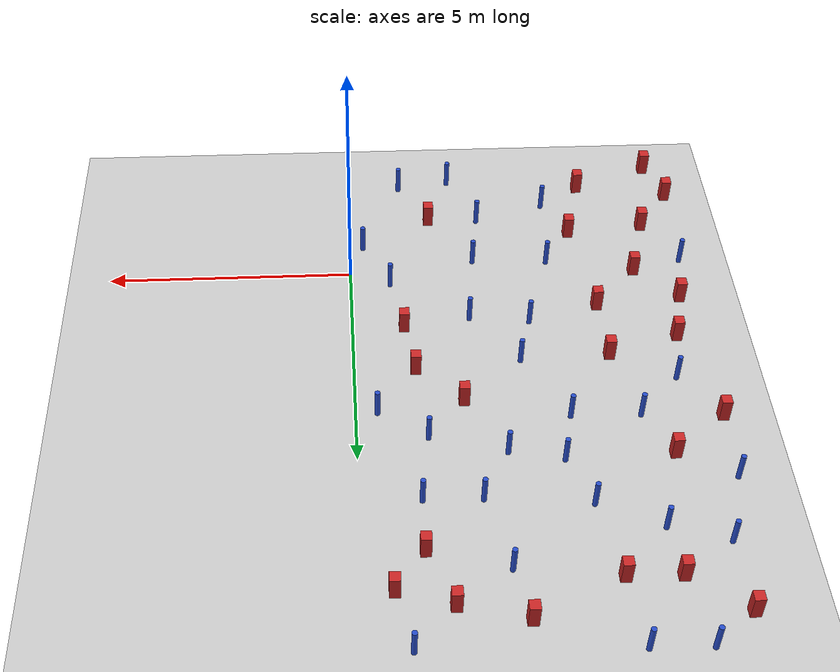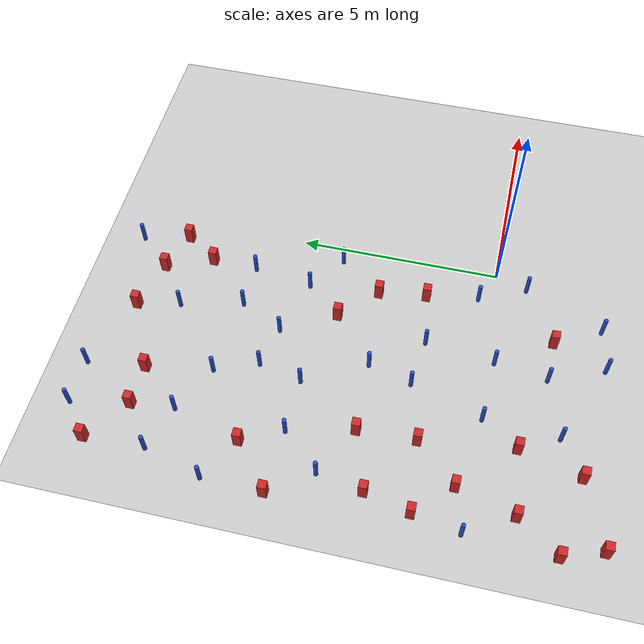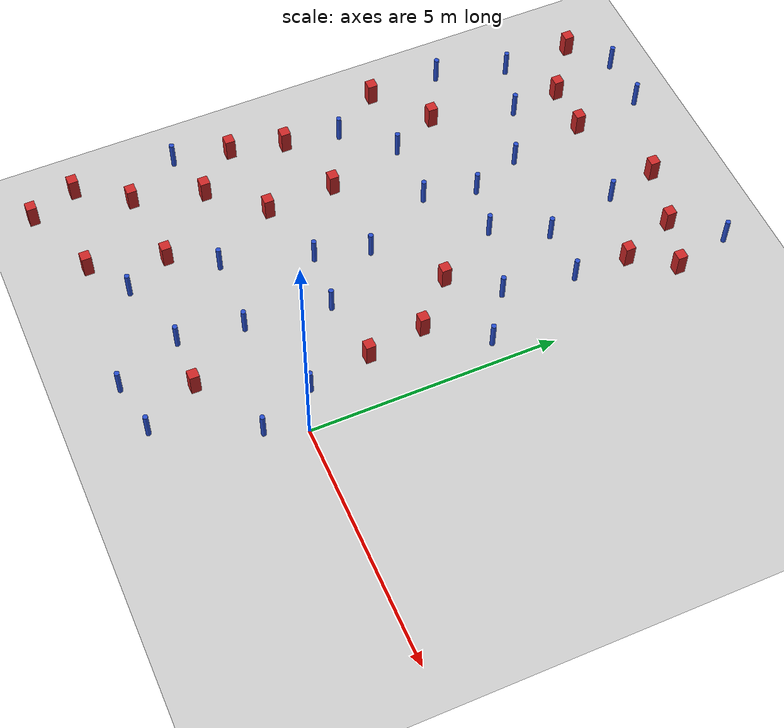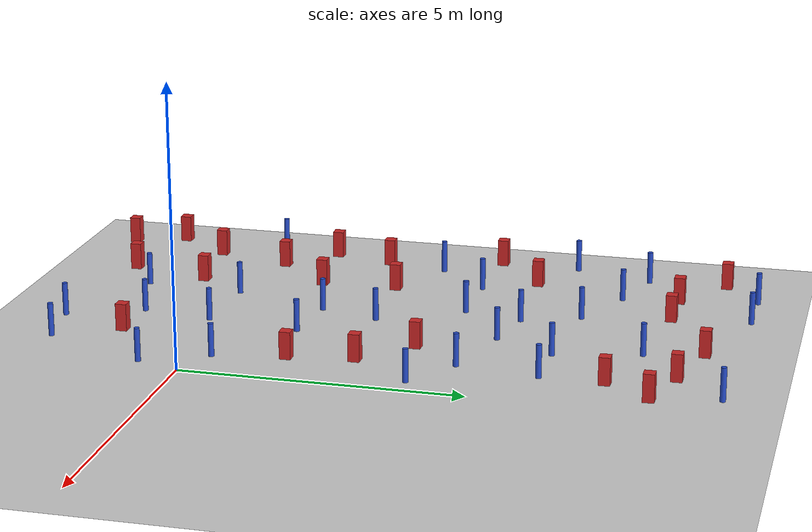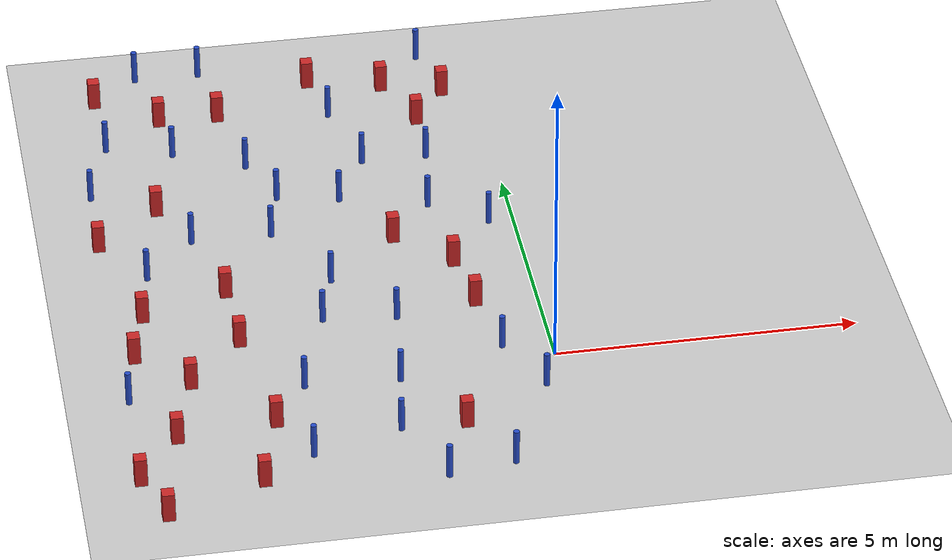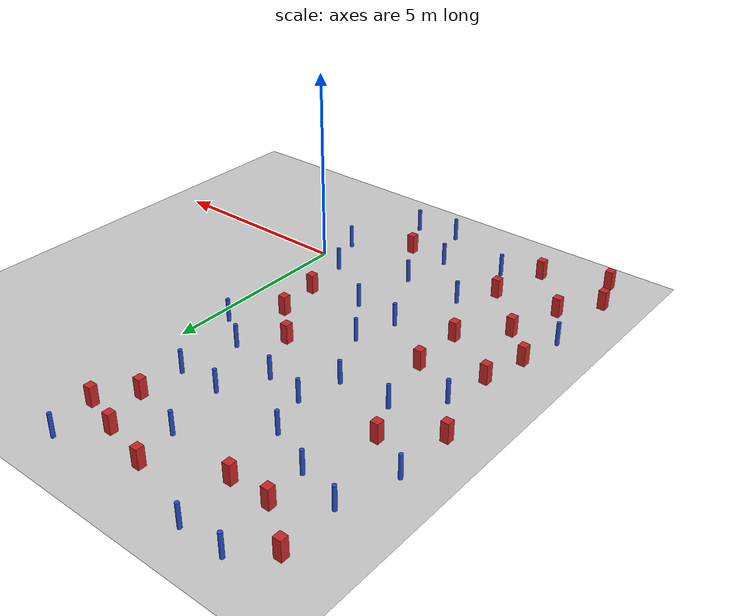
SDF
<sdf version="1.6">
 <world name="default">
  <model name="ground_plane">
   <static>1</static>
   <link name="link">
    <collision name="collision">
     <geometry><plane><normal>0 0 1</normal><size>100 100</size></plane></geometry>
     <surface><friction><ode><mu>100</mu><mu2>50</mu2></ode></friction></surface>
    </collision>
    <visual name="visual">
     <cast_shadows>0</cast_shadows>
     <geometry><plane><normal>0 0 1</normal><size>100 100</size></plane></geometry>
     <material>
      <ambient>1 1 1 1</ambient>
      <diffuse>0.8 0.8 0.8 1</diffuse>
      <specular>0.01 0.01 0.01 1</specular>
     </material>
    </visual>
   </link>
  </model>
  <model name="square_post_obstacle1">
   <static>0</static>
   <link name="link">
    <pose>0 0 0.25 0 -0 0</pose>
    <inertial>
     <mass>100</mass>
     <inertia>
      <ixx>0.166667</ixx>
      <ixy>0</ixy>
      <ixz>0</ixz>
      <iyy>0.166667</iyy>
      <iyz>0</iyz>
      <izz>0.166667</izz>
     </inertia>
    </inertial>
    <collision name="collision"><geometry><box><size>0.2 0.2 0.5</size></box></geometry></collision>
    <visual name="visual">
     <geometry><box><size>0.2 0.2 0.5</size></box></geometry>
     <material>
      <script><name>Gazebo/Red</name><uri>file://media/materials/scripts/gazebo.material</uri></script>
     </material>
    </visual>
   </link>
   <pose>-5.89802 0.141279 0 -5e-06 -0 0.000241</pose>
  </model>
  <model name="square_post_obstacle2">
   <static>0</static>
   <link name="link">
    <pose>0 0 0.25 0 -0 0</pose>
    <inertial>
     <mass>100</mass>
     <inertia>
      <ixx>0.166667</ixx>
      <ixy>0</ixy>
      <ixz>0</ixz>
      <iyy>0.166667</iyy>
      <iyz>0</iyz>
      <izz>0.166667</izz>
     </inertia>
    </inertial>
    <collision name="collision"><geometry><box><size>0.2 0.2 0.5</size></box></geometry></collision>
    <visual name="visual">
     <geometry><box><size>0.2 0.2 0.5</size></box></geometry>
     <material>
      <script><name>Gazebo/Red</name><uri>file://media/materials/scripts/gazebo.material</uri></script>
     </material>
    </visual>
   </link>
   <pose>-6.28758 -1.26073 0 -5e-06 -0 0.000241</pose>
  </model>
  <model name="pole_obstacle5">
   <static>0</static>
   <link name="link">
    <pose>0 0 0.3 0 -0 0</pose>
    <inertial>
     <mass>1</mass>
     <inertia><ixx>0.145833</ixx><ixy>0</ixy><ixz>0</ixz><iyy>0.145833</iyy><iyz>0</iyz><izz>0.125</izz></inertia>
    </inertial>
    <collision name="collision">
     <geometry><cylinder><radius>0.05</radius><length>0.6</length></cylinder></geometry>
    </collision>
    <visual name="visual">
     <geometry><cylinder><radius>0.05</radius><length>0.6</length></cylinder></geometry>
     <material>
      <script><name>Gazebo/Blue</name><uri>file://media/materials/scripts/gazebo.material</uri></script>
     </material>
    </visual>
   </link>
   <pose>-1.13885 6.0064 -1e-06 -0 1e-06 1.1e-05</pose>
  </model>
  <model name="pole_obstacle6">
   <static>0</static>
   <link name="link">
    <pose>0 0 0.3 0 -0 0</pose>
    <inertial>
     <mass>1</mass>
     <inertia><ixx>0.145833</ixx><ixy>0</ixy><ixz>0</ixz><iyy>0.145833</iyy><iyz>0</iyz><izz>0.125</izz></inertia>
    </inertial>
    <collision name="collision">
     <geometry><cylinder><radius>0.05</radius><length>0.6</length></cylinder></geometry>
    </collision>
    <visual name="visual">
     <geometry><cylinder><radius>0.05</radius><length>0.6</length></cylinder></geometry>
     <material>
      <script><name>Gazebo/Blue</name><uri>file://media/materials/scripts/gazebo.material</uri></script>
     </material>
    </visual>
   </link>
   <pose>-3.5662 1.5504 -6e-06 1e-06 -1e-06 8e-06</pose>
  </model>
  <model name="square_post_obstacle9">
   <static>0</static>
   <link name="link">
    <pose>0 0 0.25 0 -0 0</pose>
    <inertial>
     <mass>100</mass>
     <inertia>
      <ixx>0.166667</ixx>
      <ixy>0</ixy>
      <ixz>0</ixz>
      <iyy>0.166667</iyy>
      <iyz>0</iyz>
      <izz>0.166667</izz>
     </inertia>
    </inertial>
    <collision name="collision"><geometry><box><size>0.2 0.2 0.5</size></box></geometry></collision>
    <visual name="visual">
     <geometry><box><size>0.2 0.2 0.5</size></box></geometry>
     <material>
      <script><name>Gazebo/Red</name><uri>file://media/materials/scripts/gazebo.material</uri></script>
     </material>
    </visual>
   </link>
   <pose>-1.0312 1.62568 0 -5e-06 -0 0.000241</pose>
  </model>
  <model name="pole_obstacle7">
   <static>0</static>
   <link name="link">
    <pose>0 0 0.3 0 -0 0</pose>
    <inertial>
     <mass>1</mass>
     <inertia><ixx>0.145833</ixx><ixy>0</ixy><ixz>0</ixz><iyy>0.145833</iyy><iyz>0</iyz><izz>0.125</izz></inertia>
    </inertial>
    <collision name="collision">
     <geometry><cylinder><radius>0.05</radius><length>0.6</length></cylinder></geometry>
    </collision>
    <visual name="visual">
     <geometry><cylinder><radius>0.05</radius><length>0.6</length></cylinder></geometry>
     <material>
      <script><name>Gazebo/Blue</name><uri>file://media/materials/scripts/gazebo.material</uri></script>
     </material>
    </visual>
   </link>
   <pose>-2.36217 1.41405 -1e-06 -0 1e-06 1.1e-05</pose>
  </model>
  <model name="pole_obstacle10">
   <static>0</static>
   <link name="link">
    <pose>0 0 0.3 0 -0 0</pose>
    <inertial>
     <mass>1</mass>
     <inertia><ixx>0.145833</ixx><ixy>0</ixy><ixz>0</ixz><iyy>0.145833</iyy><iyz>0</iyz><izz>0.125</izz></inertia>
    </inertial>
    <collision name="collision">
     <geometry><cylinder><radius>0.05</radius><length>0.6</length></cylinder></geometry>
    </collision>
    <visual name="visual">
     <geometry><cylinder><radius>0.05</radius><length>0.6</length></cylinder></geometry>
     <material>
      <script><name>Gazebo/Blue</name><uri>file://media/materials/scripts/gazebo.material</uri></script>
     </material>
    </visual>
   </link>
   <pose>-4.11229 -0.209701 -2e-06 -1e-06 -0 9e-06</pose>
  </model>
  <model name="pole_obstacle11">
   <static>0</static>
   <link name="link">
    <pose>0 0 0.3 0 -0 0</pose>
    <inertial>
     <mass>1</mass>
     <inertia><ixx>0.145833</ixx><ixy>0</ixy><ixz>0</ixz><iyy>0.145833</iyy><iyz>0</iyz><izz>0.125</izz></inertia>
    </inertial>
    <collision name="collision">
     <geometry><cylinder><radius>0.05</radius><length>0.6</length></cylinder></geometry>
    </collision>
    <visual name="visual">
     <geometry><cylinder><radius>0.05</radius><length>0.6</length></cylinder></geometry>
     <material>
      <script><name>Gazebo/Blue</name><uri>file://media/materials/scripts/gazebo.material</uri></script>
     </material>
    </visual>
   </link>
   <pose>-6.25506 3.1961 -8e-06 0 -0 1.2e-05</pose>
  </model>
  <model name="square_post_obstacle12">
   <static>0</static>
   <link name="link">
    <pose>0 0 0.25 0 -0 0</pose>
    <inertial>
     <mass>100</mass>
     <inertia>
      <ixx>0.166667</ixx>
      <ixy>0</ixy>
      <ixz>0</ixz>
      <iyy>0.166667</iyy>
      <iyz>0</iyz>
      <izz>0.166667</izz>
     </inertia>
    </inertial>
    <collision name="collision"><geometry><box><size>0.2 0.2 0.5</size></box></geometry></collision>
    <visual name="visual">
     <geometry><box><size>0.2 0.2 0.5</size></box></geometry>
     <material>
      <script><name>Gazebo/Red</name><uri>file://media/materials/scripts/gazebo.material</uri></script>
     </material>
    </visual>
   </link>
   <pose>-5.87987 5.09643 0 -5e-06 -0 0.000241</pose>
  </model>
  <model name="square_post_obstacle13">
   <static>0</static>
   <link name="link">
    <pose>0 0 0.25 0 -0 0</pose>
    <inertial>
     <mass>100</mass>
     <inertia>
      <ixx>0.166667</ixx>
      <ixy>0</ixy>
      <ixz>0</ixz>
      <iyy>0.166667</iyy>
      <iyz>0</iyz>
      <izz>0.166667</izz>
     </inertia>
    </inertial>
    <collision name="collision"><geometry><box><size>0.2 0.2 0.5</size></box></geometry></collision>
    <visual name="visual">
     <geometry><box><size>0.2 0.2 0.5</size></box></geometry>
     <material>
      <script><name>Gazebo/Red</name><uri>file://media/materials/scripts/gazebo.material</uri></script>
     </material>
    </visual>
   </link>
   <pose>-1.71 -1.60937 0 -5e-06 -0 0.000241</pose>
  </model>
  <model name="pole_obstacle17">
   <static>0</static>
   <link name="link">
    <pose>0 0 0.3 0 -0 0</pose>
    <inertial>
     <mass>1</mass>
     <inertia><ixx>0.145833</ixx><ixy>0</ixy><ixz>0</ixz><iyy>0.145833</iyy><iyz>0</iyz><izz>0.125</izz></inertia>
    </inertial>
    <collision name="collision">
     <geometry><cylinder><radius>0.05</radius><length>0.6</length></cylinder></geometry>
    </collision>
    <visual name="visual">
     <geometry><cylinder><radius>0.05</radius><length>0.6</length></cylinder></geometry>
     <material>
      <script><name>Gazebo/Blue</name><uri>file://media/materials/scripts/gazebo.material</uri></script>
     </material>
    </visual>
   </link>
   <pose>-2.56661 -0.285708 -7e-06 0 -0 8e-06</pose>
  </model>
  <model name="square_post_obstacle15">
   <static>0</static>
   <link name="link">
    <pose>0 0 0.25 0 -0 0</pose>
    <inertial>
     <mass>100</mass>
     <inertia>
      <ixx>0.166667</ixx>
      <ixy>0</ixy>
      <ixz>0</ixz>
      <iyy>0.166667</iyy>
      <iyz>0</iyz>
      <izz>0.166667</izz>
     </inertia>
    </inertial>
    <collision name="collision"><geometry><box><size>0.2 0.2 0.5</size></box></geometry></collision>
    <visual name="visual">
     <geometry><box><size>0.2 0.2 0.5</size></box></geometry>
     <material>
      <script><name>Gazebo/Red</name><uri>file://media/materials/scripts/gazebo.material</uri></script>
     </material>
    </visual>
   </link>
   <pose>-5.0328 2.5515 0 -5e-06 -0 0.000241</pose>
  </model>
  <model name="square_post_obstacle17">
   <static>0</static>
   <link name="link">
    <pose>0 0 0.25 0 -0 0</pose>
    <inertial>
     <mass>100</mass>
     <inertia>
      <ixx>0.166667</ixx>
      <ixy>0</ixy>
      <ixz>0</ixz>
      <iyy>0.166667</iyy>
      <iyz>0</iyz>
      <izz>0.166667</izz>
     </inertia>
    </inertial>
    <collision name="collision"><geometry><box><size>0.2 0.2 0.5</size></box></geometry></collision>
    <visual name="visual">
     <geometry><box><size>0.2 0.2 0.5</size></box></geometry>
     <material>
      <script><name>Gazebo/Red</name><uri>file://media/materials/scripts/gazebo.material</uri></script>
     </material>
    </visual>
   </link>
   <pose>-5.07218 -2.59141 0 -5e-06 -0 0.000241</pose>
  </model>
  <model name="pole_obstacle23">
   <static>0</static>
   <link name="link">
    <pose>0 0 0.3 0 -0 0</pose>
    <inertial>
     <mass>1</mass>
     <inertia><ixx>0.145833</ixx><ixy>0</ixy><ixz>0</ixz><iyy>0.145833</iyy><iyz>0</iyz><izz>0.125</izz></inertia>
    </inertial>
    <collision name="collision">
     <geometry><cylinder><radius>0.05</radius><length>0.6</length></cylinder></geometry>
    </collision>
    <visual name="visual">
     <geometry><cylinder><radius>0.05</radius><length>0.6</length></cylinder></geometry>
     <material>
      <script><name>Gazebo/Blue</name><uri>file://media/materials/scripts/gazebo.material</uri></script>
     </material>
    </visual>
   </link>
   <pose>-6.51548 7.11232 -4e-06 0 -0 1e-06</pose>
  </model>
  <model name="pole_obstacle24">
   <static>0</static>
   <link name="link">
    <pose>0 0 0.3 0 -0 0</pose>
    <inertial>
     <mass>1</mass>
     <inertia><ixx>0.145833</ixx><ixy>0</ixy><ixz>0</ixz><iyy>0.145833</iyy><iyz>0</iyz><izz>0.125</izz></inertia>
    </inertial>
    <collision name="collision">
     <geometry><cylinder><radius>0.05</radius><length>0.6</length></cylinder></geometry>
    </collision>
    <visual name="visual">
     <geometry><cylinder><radius>0.05</radius><length>0.6</length></cylinder></geometry>
     <material>
      <script><name>Gazebo/Blue</name><uri>file://media/materials/scripts/gazebo.material</uri></script>
     </material>
    </visual>
   </link>
   <pose>-2.2071 -2.8996 -1e-06 1e-06 -1e-06 1e-05</pose>
  </model>
  <model name="square_post_obstacle21">
   <static>0</static>
   <link name="link">
    <pose>0 0 0.25 0 -0 0</pose>
    <inertial>
     <mass>100</mass>
     <inertia>
      <ixx>0.166667</ixx>
      <ixy>0</ixy>
      <ixz>0</ixz>
      <iyy>0.166667</iyy>
      <iyz>0</iyz>
      <izz>0.166667</izz>
     </inertia>
    </inertial>
    <collision name="collision"><geometry><box><size>0.2 0.2 0.5</size></box></geometry></collision>
    <visual name="visual">
     <geometry><box><size>0.2 0.2 0.5</size></box></geometry>
     <material>
      <script><name>Gazebo/Red</name><uri>file://media/materials/scripts/gazebo.material</uri></script>
     </material>
    </visual>
   </link>
   <pose>-6.56118 8.56873 0 -5e-06 -0 0.000241</pose>
  </model>
  <model name="pole_obstacle27">
   <static>0</static>
   <link name="link">
    <pose>0 0 0.3 0 -0 0</pose>
    <inertial>
     <mass>1</mass>
     <inertia><ixx>0.145833</ixx><ixy>0</ixy><ixz>0</ixz><iyy>0.145833</iyy><iyz>0</iyz><izz>0.125</izz></inertia>
    </inertial>
    <collision name="collision">
     <geometry><cylinder><radius>0.05</radius><length>0.6</length></cylinder></geometry>
    </collision>
    <visual name="visual">
     <geometry><cylinder><radius>0.05</radius><length>0.6</length></cylinder></geometry>
     <material>
      <script><name>Gazebo/Blue</name><uri>file://media/materials/scripts/gazebo.material</uri></script>
     </material>
    </visual>
   </link>
   <pose>-3.8262 5.16682 -3e-06 0 -0 7e-06</pose>
  </model>
  <model name="square_post_obstacle23">
   <static>0</static>
   <link name="link">
    <pose>0 0 0.25 0 -0 0</pose>
    <inertial>
     <mass>100</mass>
     <inertia>
      <ixx>0.166667</ixx>
      <ixy>0</ixy>
      <ixz>0</ixz>
      <iyy>0.166667</iyy>
      <iyz>0</iyz>
      <izz>0.166667</izz>
     </inertia>
    </inertial>
    <collision name="collision"><geometry><box><size>0.2 0.2 0.5</size></box></geometry></collision>
    <visual name="visual">
     <geometry><box><size>0.2 0.2 0.5</size></box></geometry>
     <material>
      <script><name>Gazebo/Red</name><uri>file://media/materials/scripts/gazebo.material</uri></script>
     </material>
    </visual>
   </link>
   <pose>-2.07569 3.65792 0 -5e-06 -0 0.000241</pose>
  </model>
  <model name="pole_obstacle29">
   <static>0</static>
   <link name="link">
    <pose>0 0 0.3 0 -0 0</pose>
    <inertial>
     <mass>1</mass>
     <inertia><ixx>0.145833</ixx><ixy>0</ixy><ixz>0</ixz><iyy>0.145833</iyy><iyz>0</iyz><izz>0.125</izz></inertia>
    </inertial>
    <collision name="collision">
     <geometry><cylinder><radius>0.05</radius><length>0.6</length></cylinder></geometry>
    </collision>
    <visual name="visual">
     <geometry><cylinder><radius>0.05</radius><length>0.6</length></cylinder></geometry>
     <material>
      <script><name>Gazebo/Blue</name><uri>file://media/materials/scripts/gazebo.material</uri></script>
     </material>
    </visual>
   </link>
   <pose>-4.22269 6.2037 -1e-06 -0 -1e-06 7e-06</pose>
  </model>
  <model name="square_post_obstacle26">
   <static>0</static>
   <link name="link">
    <pose>0 0 0.25 0 -0 0</pose>
    <inertial>
     <mass>100</mass>
     <inertia>
      <ixx>0.166667</ixx>
      <ixy>0</ixy>
      <ixz>0</ixz>
      <iyy>0.166667</iyy>
      <iyz>0</iyz>
      <izz>0.166667</izz>
     </inertia>
    </inertial>
    <collision name="collision"><geometry><box><size>0.2 0.2 0.5</size></box></geometry></collision>
    <visual name="visual">
     <geometry><box><size>0.2 0.2 0.5</size></box></geometry>
     <material>
      <script><name>Gazebo/Red</name><uri>file://media/materials/scripts/gazebo.material</uri></script>
     </material>
    </visual>
   </link>
   <pose>-4.5096 7.79032 0 -5e-06 -0 0.000241</pose>
  </model>
  <model name="pole_obstacle32">
   <static>0</static>
   <link name="link">
    <pose>0 0 0.3 0 -0 0</pose>
    <inertial>
     <mass>1</mass>
     <inertia><ixx>0.145833</ixx><ixy>0</ixy><ixz>0</ixz><iyy>0.145833</iyy><iyz>0</iyz><izz>0.125</izz></inertia>
    </inertial>
    <collision name="collision">
     <geometry><cylinder><radius>0.05</radius><length>0.6</length></cylinder></geometry>
    </collision>
    <visual name="visual">
     <geometry><cylinder><radius>0.05</radius><length>0.6</length></cylinder></geometry>
     <material>
      <script><name>Gazebo/Blue</name><uri>file://media/materials/scripts/gazebo.material</uri></script>
     </material>
    </visual>
   </link>
   <pose>-0.278104 -0.794941 -6e-06 -1e-06 -0 3e-06</pose>
  </model>
  <model name="pole_obstacle34">
   <static>0</static>
   <link name="link">
    <pose>0 0 0.3 0 -0 0</pose>
    <inertial>
     <mass>1</mass>
     <inertia><ixx>0.145833</ixx><ixy>0</ixy><ixz>0</ixz><iyy>0.145833</iyy><iyz>0</iyz><izz>0.125</izz></inertia>
    </inertial>
    <collision name="collision">
     <geometry><cylinder><radius>0.05</radius><length>0.6</length></cylinder></geometry>
    </collision>
    <visual name="visual">
     <geometry><cylinder><radius>0.05</radius><length>0.6</length></cylinder></geometry>
     <material>
      <script><name>Gazebo/Blue</name><uri>file://media/materials/scripts/gazebo.material</uri></script>
     </material>
    </visual>
   </link>
   <pose>-6.92528 5.68424 -1e-06 -0 -1e-06 7e-06</pose>
  </model>
  <model name="pole_obstacle35">
   <static>0</static>
   <link name="link">
    <pose>0 0 0.3 0 -0 0</pose>
    <inertial>
     <mass>1</mass>
     <inertia><ixx>0.145833</ixx><ixy>0</ixy><ixz>0</ixz><iyy>0.145833</iyy><iyz>0</iyz><izz>0.125</izz></inertia>
    </inertial>
    <collision name="collision">
     <geometry><cylinder><radius>0.05</radius><length>0.6</length></cylinder></geometry>
    </collision>
    <visual name="visual">
     <geometry><cylinder><radius>0.05</radius><length>0.6</length></cylinder></geometry>
     <material>
      <script><name>Gazebo/Blue</name><uri>file://media/materials/scripts/gazebo.material</uri></script>
     </material>
    </visual>
   </link>
   <pose>-0.806339 0.348626 -3e-06 1e-06 -0 2e-06</pose>
  </model>
  <model name="square_post_obstacle29">
   <static>0</static>
   <link name="link">
    <pose>0 0 0.25 0 -0 0</pose>
    <inertial>
     <mass>100</mass>
     <inertia>
      <ixx>0.166667</ixx>
      <ixy>0</ixy>
      <ixz>0</ixz>
      <iyy>0.166667</iyy>
      <iyz>0</iyz>
      <izz>0.166667</izz>
     </inertia>
    </inertial>
    <collision name="collision"><geometry><box><size>0.2 0.2 0.5</size></box></geometry></collision>
    <visual name="visual">
     <geometry><box><size>0.2 0.2 0.5</size></box></geometry>
     <material>
      <script><name>Gazebo/Red</name><uri>file://media/materials/scripts/gazebo.material</uri></script>
     </material>
    </visual>
   </link>
   <pose>-4.98392 1.14563 0 -5e-06 -0 0.000241</pose>
  </model>
  <model name="square_post_obstacle31">
   <static>0</static>
   <link name="link">
    <pose>0 0 0.25 0 -0 0</pose>
    <inertial>
     <mass>100</mass>
     <inertia>
      <ixx>0.166667</ixx>
      <ixy>0</ixy>
      <ixz>0</ixz>
      <iyy>0.166667</iyy>
      <iyz>0</iyz>
      <izz>0.166667</izz>
     </inertia>
    </inertial>
    <collision name="collision"><geometry><box><size>0.2 0.2 0.5</size></box></geometry></collision>
    <visual name="visual">
     <geometry><box><size>0.2 0.2 0.5</size></box></geometry>
     <material>
      <script><name>Gazebo/Red</name><uri>file://media/materials/scripts/gazebo.material</uri></script>
     </material>
    </visual>
   </link>
   <pose>-4.68918 -1.09976 0 -5e-06 -0 0.000241</pose>
  </model>
  <model name="pole_obstacle38">
   <static>0</static>
   <link name="link">
    <pose>0 0 0.3 0 -0 0</pose>
    <inertial>
     <mass>1</mass>
     <inertia><ixx>0.145833</ixx><ixy>0</ixy><ixz>0</ixz><iyy>0.145833</iyy><iyz>0</iyz><izz>0.125</izz></inertia>
    </inertial>
    <collision name="collision">
     <geometry><cylinder><radius>0.05</radius><length>0.6</length></cylinder></geometry>
    </collision>
    <visual name="visual">
     <geometry><cylinder><radius>0.05</radius><length>0.6</length></cylinder></geometry>
     <material>
      <script><name>Gazebo/Blue</name><uri>file://media/materials/scripts/gazebo.material</uri></script>
     </material>
    </visual>
   </link>
   <pose>-4.06551 4.10628 -4e-06 0 -0 1e-06</pose>
  </model>
  <model name="square_post_obstacle32">
   <static>0</static>
   <link name="link">
    <pose>0 0 0.25 0 -0 0</pose>
    <inertial>
     <mass>100</mass>
     <inertia>
      <ixx>0.166667</ixx>
      <ixy>0</ixy>
      <ixz>0</ixz>
      <iyy>0.166667</iyy>
      <iyz>0</iyz>
      <izz>0.166667</izz>
     </inertia>
    </inertial>
    <collision name="collision"><geometry><box><size>0.2 0.2 0.5</size></box></geometry></collision>
    <visual name="visual">
     <geometry><box><size>0.2 0.2 0.5</size></box></geometry>
     <material>
      <script><name>Gazebo/Red</name><uri>file://media/materials/scripts/gazebo.material</uri></script>
     </material>
    </visual>
   </link>
   <pose>-2.82783 8.59758 0 -5e-06 -0 0.000241</pose>
  </model>
  <model name="square_post_obstacle33">
   <static>0</static>
   <link name="link">
    <pose>0 0 0.25 0 -0 0</pose>
    <inertial>
     <mass>100</mass>
     <inertia>
      <ixx>0.166667</ixx>
      <ixy>0</ixy>
      <ixz>0</ixz>
      <iyy>0.166667</iyy>
      <iyz>0</iyz>
      <izz>0.166667</izz>
     </inertia>
    </inertial>
    <collision name="collision"><geometry><box><size>0.2 0.2 0.5</size></box></geometry></collision>
    <visual name="visual">
     <geometry><box><size>0.2 0.2 0.5</size></box></geometry>
     <material>
      <script><name>Gazebo/Red</name><uri>file://media/materials/scripts/gazebo.material</uri></script>
     </material>
    </visual>
   </link>
   <pose>-6.65644 -3.20154 0 -5e-06 -0 0.000241</pose>
  </model>
  <model name="pole_obstacle41">
   <static>0</static>
   <link name="link">
    <pose>0 0 0.3 0 -0 0</pose>
    <inertial>
     <mass>1</mass>
     <inertia><ixx>0.145833</ixx><ixy>0</ixy><ixz>0</ixz><iyy>0.145833</iyy><iyz>0</iyz><izz>0.125</izz></inertia>
    </inertial>
    <collision name="collision">
     <geometry><cylinder><radius>0.05</radius><length>0.6</length></cylinder></geometry>
    </collision>
    <visual name="visual">
     <geometry><cylinder><radius>0.05</radius><length>0.6</length></cylinder></geometry>
     <material>
      <script><name>Gazebo/Blue</name><uri>file://media/materials/scripts/gazebo.material</uri></script>
     </material>
    </visual>
   </link>
   <pose>-5.77847 9.21658 -6e-06 1e-06 0 3e-06</pose>
  </model>
  <model name="pole_obstacle43">
   <static>0</static>
   <link name="link">
    <pose>0 0 0.3 0 -0 0</pose>
    <inertial>
     <mass>1</mass>
     <inertia><ixx>0.145833</ixx><ixy>0</ixy><ixz>0</ixz><iyy>0.145833</iyy><iyz>0</iyz><izz>0.125</izz></inertia>
    </inertial>
    <collision name="collision">
     <geometry><cylinder><radius>0.05</radius><length>0.6</length></cylinder></geometry>
    </collision>
    <visual name="visual">
     <geometry><cylinder><radius>0.05</radius><length>0.6</length></cylinder></geometry>
     <material>
      <script><name>Gazebo/Blue</name><uri>file://media/materials/scripts/gazebo.material</uri></script>
     </material>
    </visual>
   </link>
   <pose>-5.40889 6.76834 -3e-06 -1e-06 -0 1e-06</pose>
  </model>
  <model name="pole_obstacle49">
   <static>0</static>
   <link name="link">
    <pose>0 0 0.3 0 -0 0</pose>
    <inertial>
     <mass>1</mass>
     <inertia><ixx>0.145833</ixx><ixy>0</ixy><ixz>0</ixz><iyy>0.145833</iyy><iyz>0</iyz><izz>0.125</izz></inertia>
    </inertial>
    <collision name="collision">
     <geometry><cylinder><radius>0.05</radius><length>0.6</length></cylinder></geometry>
    </collision>
    <visual name="visual">
     <geometry><cylinder><radius>0.05</radius><length>0.6</length></cylinder></geometry>
     <material>
      <script><name>Gazebo/Blue</name><uri>file://media/materials/scripts/gazebo.material</uri></script>
     </material>
    </visual>
   </link>
   <pose>-1.11859 -2.72491 -8e-06 0 -0 9e-06</pose>
  </model>
  <model name="square_post_obstacle36">
   <static>0</static>
   <link name="link">
    <pose>0 0 0.25 0 -0 0</pose>
    <inertial>
     <mass>100</mass>
     <inertia>
      <ixx>0.166667</ixx>
      <ixy>0</ixy>
      <ixz>0</ixz>
      <iyy>0.166667</iyy>
      <iyz>0</iyz>
      <izz>0.166667</izz>
     </inertia>
    </inertial>
    <collision name="collision"><geometry><box><size>0.2 0.2 0.5</size></box></geometry></collision>
    <visual name="visual">
     <geometry><box><size>0.2 0.2 0.5</size></box></geometry>
     <material>
      <script><name>Gazebo/Red</name><uri>file://media/materials/scripts/gazebo.material</uri></script>
     </material>
    </visual>
   </link>
   <pose>-6.97969 -2.24909 0 -5e-06 -0 0.000241</pose>
  </model>
  <model name="pole_obstacle55">
   <static>0</static>
   <link name="link">
    <pose>0 0 0.3 0 -0 0</pose>
    <inertial>
     <mass>1</mass>
     <inertia><ixx>0.145833</ixx><ixy>0</ixy><ixz>0</ixz><iyy>0.145833</iyy><iyz>0</iyz><izz>0.125</izz></inertia>
    </inertial>
    <collision name="collision">
     <geometry><cylinder><radius>0.05</radius><length>0.6</length></cylinder></geometry>
    </collision>
    <visual name="visual">
     <geometry><cylinder><radius>0.05</radius><length>0.6</length></cylinder></geometry>
     <material>
      <script><name>Gazebo/Blue</name><uri>file://media/materials/scripts/gazebo.material</uri></script>
     </material>
    </visual>
   </link>
   <pose>-2.60371 7.55641 -2e-06 -1e-06 -0 9e-06</pose>
  </model>
  <model name="pole_obstacle56">
   <static>0</static>
   <link name="link">
    <pose>0 0 0.3 0 -0 0</pose>
    <inertial>
     <mass>1</mass>
     <inertia><ixx>0.145833</ixx><ixy>0</ixy><ixz>0</ixz><iyy>0.145833</iyy><iyz>0</iyz><izz>0.125</izz></inertia>
    </inertial>
    <collision name="collision">
     <geometry><cylinder><radius>0.05</radius><length>0.6</length></cylinder></geometry>
    </collision>
    <visual name="visual">
     <geometry><cylinder><radius>0.05</radius><length>0.6</length></cylinder></geometry>
     <material>
      <script><name>Gazebo/Blue</name><uri>file://media/materials/scripts/gazebo.material</uri></script>
     </material>
    </visual>
   </link>
   <pose>-6.93178 -0.157774 -1e-06 0 -0 7e-06</pose>
  </model>
  <model name="square_post_obstacle40">
   <static>0</static>
   <link name="link">
    <pose>0 0 0.25 0 -0 0</pose>
    <inertial>
     <mass>100</mass>
     <inertia>
      <ixx>0.166667</ixx>
      <ixy>0</ixy>
      <ixz>0</ixz>
      <iyy>0.166667</iyy>
      <iyz>0</iyz>
      <izz>0.166667</izz>
     </inertia>
    </inertial>
    <collision name="collision"><geometry><box><size>0.2 0.2 0.5</size></box></geometry></collision>
    <visual name="visual">
     <geometry><box><size>0.2 0.2 0.5</size></box></geometry>
     <material>
      <script><name>Gazebo/Red</name><uri>file://media/materials/scripts/gazebo.material</uri></script>
     </material>
    </visual>
   </link>
   <pose>-1.57316 8.27621 0 -5e-06 -0 0.000241</pose>
  </model>
  <model name="pole_obstacle57">
   <static>0</static>
   <link name="link">
    <pose>0 0 0.3 0 -0 0</pose>
    <inertial>
     <mass>1</mass>
     <inertia><ixx>0.145833</ixx><ixy>0</ixy><ixz>0</ixz><iyy>0.145833</iyy><iyz>0</iyz><izz>0.125</izz></inertia>
    </inertial>
    <collision name="collision">
     <geometry><cylinder><radius>0.05</radius><length>0.6</length></cylinder></geometry>
    </collision>
    <visual name="visual">
     <geometry><cylinder><radius>0.05</radius><length>0.6</length></cylinder></geometry>
     <material>
      <script><name>Gazebo/Blue</name><uri>file://media/materials/scripts/gazebo.material</uri></script>
     </material>
    </visual>
   </link>
   <pose>-1.34233 4.54162 -7e-06 -1e-06 -1e-06 1e-05</pose>
  </model>
  <model name="pole_obstacle61">
   <static>0</static>
   <link name="link">
    <pose>0 0 0.3 0 -0 0</pose>
    <inertial>
     <mass>1</mass>
     <inertia><ixx>0.145833</ixx><ixy>0</ixy><ixz>0</ixz><iyy>0.145833</iyy><iyz>0</iyz><izz>0.125</izz></inertia>
    </inertial>
    <collision name="collision">
     <geometry><cylinder><radius>0.05</radius><length>0.6</length></cylinder></geometry>
    </collision>
    <visual name="visual">
     <geometry><cylinder><radius>0.05</radius><length>0.6</length></cylinder></geometry>
     <material>
      <script><name>Gazebo/Blue</name><uri>file://media/materials/scripts/gazebo.material</uri></script>
     </material>
    </visual>
   </link>
   <pose>-2.79259 4.94894 -2e-06 -1e-06 -0 9e-06</pose>
  </model>
  <model name="pole_obstacle62">
   <static>0</static>
   <link name="link">
    <pose>0 0 0.3 0 -0 0</pose>
    <inertial>
     <mass>1</mass>
     <inertia><ixx>0.145833</ixx><ixy>0</ixy><ixz>0</ixz><iyy>0.145833</iyy><iyz>0</iyz><izz>0.125</izz></inertia>
    </inertial>
    <collision name="collision">
     <geometry><cylinder><radius>0.05</radius><length>0.6</length></cylinder></geometry>
    </collision>
    <visual name="visual">
     <geometry><cylinder><radius>0.05</radius><length>0.6</length></cylinder></geometry>
     <material>
      <script><name>Gazebo/Blue</name><uri>file://media/materials/scripts/gazebo.material</uri></script>
     </material>
    </visual>
   </link>
   <pose>-2.75684 -1.57645 -3e-06 0 -0 6e-06</pose>
  </model>
  <model name="pole_obstacle63">
   <static>0</static>
   <link name="link">
    <pose>0 0 0.3 0 -0 0</pose>
    <inertial>
     <mass>1</mass>
     <inertia><ixx>0.145833</ixx><ixy>0</ixy><ixz>0</ixz><iyy>0.145833</iyy><iyz>0</iyz><izz>0.125</izz></inertia>
    </inertial>
    <collision name="collision">
     <geometry><cylinder><radius>0.05</radius><length>0.6</length></cylinder></geometry>
    </collision>
    <visual name="visual">
     <geometry><cylinder><radius>0.05</radius><length>0.6</length></cylinder></geometry>
     <material>
      <script><name>Gazebo/Blue</name><uri>file://media/materials/scripts/gazebo.material</uri></script>
     </material>
    </visual>
   </link>
   <pose>-4.21872 -2.02426 -1e-06 -1e-06 0 1.2e-05</pose>
  </model>
  <model name="pole_obstacle65">
   <static>0</static>
   <link name="link">
    <pose>0 0 0.3 0 -0 0</pose>
    <inertial>
     <mass>1</mass>
     <inertia><ixx>0.145833</ixx><ixy>0</ixy><ixz>0</ixz><iyy>0.145833</iyy><iyz>0</iyz><izz>0.125</izz></inertia>
    </inertial>
    <collision name="collision">
     <geometry><cylinder><radius>0.05</radius><length>0.6</length></cylinder></geometry>
    </collision>
    <visual name="visual">
     <geometry><cylinder><radius>0.05</radius><length>0.6</length></cylinder></geometry>
     <material>
      <script><name>Gazebo/Blue</name><uri>file://media/materials/scripts/gazebo.material</uri></script>
     </material>
    </visual>
   </link>
   <pose>-0.810591 9.12486 -1e-06 -1e-06 -0 1e-05</pose>
  </model>
  <model name="square_post_obstacle41">
   <static>0</static>
   <link name="link">
    <pose>0 0 0.25 0 -0 0</pose>
    <inertial>
     <mass>100</mass>
     <inertia>
      <ixx>0.166667</ixx>
      <ixy>0</ixy>
      <ixz>0</ixz>
      <iyy>0.166667</iyy>
      <iyz>0</iyz>
      <izz>0.166667</izz>
     </inertia>
    </inertial>
    <collision name="collision"><geometry><box><size>0.2 0.2 0.5</size></box></geometry></collision>
    <visual name="visual">
     <geometry><box><size>0.2 0.2 0.5</size></box></geometry>
     <material>
      <script><name>Gazebo/Red</name><uri>file://media/materials/scripts/gazebo.material</uri></script>
     </material>
    </visual>
   </link>
   <pose>-6.71815 0.979409 0 -5e-06 -0 0.000241</pose>
  </model>
  <model name="square_post_obstacle46">
   <static>0</static>
   <link name="link">
    <pose>0 0 0.25 0 -0 0</pose>
    <inertial>
     <mass>100</mass>
     <inertia>
      <ixx>0.166667</ixx>
      <ixy>0</ixy>
      <ixz>0</ixz>
      <iyy>0.166667</iyy>
      <iyz>0</iyz>
      <izz>0.166667</izz>
     </inertia>
    </inertial>
    <collision name="collision"><geometry><box><size>0.2 0.2 0.5</size></box></geometry></collision>
    <visual name="visual">
     <geometry><box><size>0.2 0.2 0.5</size></box></geometry>
     <material>
      <script><name>Gazebo/Red</name><uri>file://media/materials/scripts/gazebo.material</uri></script>
     </material>
    </visual>
   </link>
   <pose>-5.52176 7.805 0 -5e-06 -0 0.000241</pose>
  </model>
  <model name="pole_obstacle69">
   <static>0</static>
   <link name="link">
    <pose>0 0 0.3 0 -0 0</pose>
    <inertial>
     <mass>1</mass>
     <inertia><ixx>0.145833</ixx><ixy>0</ixy><ixz>0</ixz><iyy>0.145833</iyy><iyz>0</iyz><izz>0.125</izz></inertia>
    </inertial>
    <collision name="collision">
     <geometry><cylinder><radius>0.05</radius><length>0.6</length></cylinder></geometry>
    </collision>
    <visual name="visual">
     <geometry><cylinder><radius>0.05</radius><length>0.6</length></cylinder></geometry>
     <material>
      <script><name>Gazebo/Blue</name><uri>file://media/materials/scripts/gazebo.material</uri></script>
     </material>
    </visual>
   </link>
   <pose>-0.411148 3.88853 -6e-06 0 -0 2e-06</pose>
  </model>
  <model name="pole_obstacle70">
   <static>0</static>
   <link name="link">
    <pose>0 0 0.3 0 -0 0</pose>
    <inertial>
     <mass>1</mass>
     <inertia><ixx>0.145833</ixx><ixy>0</ixy><ixz>0</ixz><iyy>0.145833</iyy><iyz>0</iyz><izz>0.125</izz></inertia>
    </inertial>
    <collision name="collision">
     <geometry><cylinder><radius>0.05</radius><length>0.6</length></cylinder></geometry>
    </collision>
    <visual name="visual">
     <geometry><cylinder><radius>0.05</radius><length>0.6</length></cylinder></geometry>
     <material>
      <script><name>Gazebo/Blue</name><uri>file://media/materials/scripts/gazebo.material</uri></script>
     </material>
    </visual>
   </link>
   <pose>-3.27237 2.62164 -2e-06 1e-06 -1e-06 9e-06</pose>
  </model>
  <model name="pole_obstacle71">
   <static>0</static>
   <link name="link">
    <pose>0 0 0.3 0 -0 0</pose>
    <inertial>
     <mass>1</mass>
     <inertia><ixx>0.145833</ixx><ixy>0</ixy><ixz>0</ixz><iyy>0.145833</iyy><iyz>0</iyz><izz>0.125</izz></inertia>
    </inertial>
    <collision name="collision">
     <geometry><cylinder><radius>0.05</radius><length>0.6</length></cylinder></geometry>
    </collision>
    <visual name="visual">
     <geometry><cylinder><radius>0.05</radius><length>0.6</length></cylinder></geometry>
     <material>
      <script><name>Gazebo/Blue</name><uri>file://media/materials/scripts/gazebo.material</uri></script>
     </material>
    </visual>
   </link>
   <pose>-4.6745 9.2049 -6e-06 0 -0 1e-06</pose>
  </model>
  <model name="square_post_obstacle50">
   <static>0</static>
   <link name="link">
    <pose>0 0 0.25 0 -0 0</pose>
    <inertial>
     <mass>100</mass>
     <inertia>
      <ixx>0.166667</ixx>
      <ixy>0</ixy>
      <ixz>0</ixz>
      <iyy>0.166667</iyy>
      <iyz>0</iyz>
      <izz>0.166667</izz>
     </inertia>
    </inertial>
    <collision name="collision"><geometry><box><size>0.2 0.2 0.5</size></box></geometry></collision>
    <visual name="visual">
     <geometry><box><size>0.2 0.2 0.5</size></box></geometry>
     <material>
      <script><name>Gazebo/Red</name><uri>file://media/materials/scripts/gazebo.material</uri></script>
     </material>
    </visual>
   </link>
   <pose>-6.94879 4.214 0 -5e-06 -0 0.000241</pose>
  </model>
  <model name="square_post_obstacle51">
   <static>0</static>
   <link name="link">
    <pose>0 0 0.25 0 -0 0</pose>
    <inertial>
     <mass>100</mass>
     <inertia>
      <ixx>0.166667</ixx>
      <ixy>0</ixy>
      <ixz>0</ixz>
      <iyy>0.166667</iyy>
      <iyz>0</iyz>
      <izz>0.166667</izz>
     </inertia>
    </inertial>
    <collision name="collision"><geometry><box><size>0.2 0.2 0.5</size></box></geometry></collision>
    <visual name="visual">
     <geometry><box><size>0.2 0.2 0.5</size></box></geometry>
     <material>
      <script><name>Gazebo/Red</name><uri>file://media/materials/scripts/gazebo.material</uri></script>
     </material>
    </visual>
   </link>
   <pose>-6.45794 2.08383 0 -5e-06 -0 0.000241</pose>
  </model>
  <model name="pole_obstacle78">
   <static>0</static>
   <link name="link">
    <pose>0 0 0.3 0 -0 0</pose>
    <inertial>
     <mass>1</mass>
     <inertia><ixx>0.145833</ixx><ixy>0</ixy><ixz>0</ixz><iyy>0.145833</iyy><iyz>0</iyz><izz>0.125</izz></inertia>
    </inertial>
    <collision name="collision">
     <geometry><cylinder><radius>0.05</radius><length>0.6</length></cylinder></geometry>
    </collision>
    <visual name="visual">
     <geometry><cylinder><radius>0.05</radius><length>0.6</length></cylinder></geometry>
     <material>
      <script><name>Gazebo/Blue</name><uri>file://media/materials/scripts/gazebo.material</uri></script>
     </material>
    </visual>
   </link>
   <pose>-2.2413 6.02592 -3e-06 0 -0 7e-06</pose>
  </model>
  <model name="square_post_obstacle53">
   <static>0</static>
   <link name="link">
    <pose>0 0 0.25 0 -0 0</pose>
    <inertial>
     <mass>100</mass>
     <inertia>
      <ixx>0.166667</ixx>
      <ixy>0</ixy>
      <ixz>0</ixz>
      <iyy>0.166667</iyy>
      <iyz>0</iyz>
      <izz>0.166667</izz>
     </inertia>
    </inertial>
    <collision name="collision"><geometry><box><size>0.2 0.2 0.5</size></box></geometry></collision>
    <visual name="visual">
     <geometry><box><size>0.2 0.2 0.5</size></box></geometry>
     <material>
      <script><name>Gazebo/Red</name><uri>file://media/materials/scripts/gazebo.material</uri></script>
     </material>
    </visual>
   </link>
   <pose>-1.19718 2.80288 0 -5e-06 -0 0.000241</pose>
  </model>
  <model name="square_post_obstacle54">
   <static>0</static>
   <link name="link">
    <pose>0 0 0.25 0 -0 0</pose>
    <inertial>
     <mass>100</mass>
     <inertia>
      <ixx>0.166667</ixx>
      <ixy>0</ixy>
      <ixz>0</ixz>
      <iyy>0.166667</iyy>
      <iyz>0</iyz>
      <izz>0.166667</izz>
     </inertia>
    </inertial>
    <collision name="collision"><geometry><box><size>0.2 0.2 0.5</size></box></geometry></collision>
    <visual name="visual">
     <geometry><box><size>0.2 0.2 0.5</size></box></geometry>
     <material>
      <script><name>Gazebo/Red</name><uri>file://media/materials/scripts/gazebo.material</uri></script>
     </material>
    </visual>
   </link>
   <pose>-1.126 7.13085 0 -5e-06 -0 0.000241</pose>
  </model>
  <model name="pole_obstacle83">
   <static>0</static>
   <link name="link">
    <pose>0 0 0.3 0 -0 0</pose>
    <inertial>
     <mass>1</mass>
     <inertia><ixx>0.145833</ixx><ixy>0</ixy><ixz>0</ixz><iyy>0.145833</iyy><iyz>0</iyz><izz>0.125</izz></inertia>
    </inertial>
    <collision name="collision">
     <geometry><cylinder><radius>0.05</radius><length>0.6</length></cylinder></geometry>
    </collision>
    <visual name="visual">
     <geometry><cylinder><radius>0.05</radius><length>0.6</length></cylinder></geometry>
     <material>
      <script><name>Gazebo/Blue</name><uri>file://media/materials/scripts/gazebo.material</uri></script>
     </material>
    </visual>
   </link>
   <pose>-5.40454 4.12568 -1e-06 -0 -1e-06 7e-06</pose>
  </model>
  <model name="square_post_obstacle56">
   <static>0</static>
   <link name="link">
    <pose>0 0 0.25 0 -0 0</pose>
    <inertial>
     <mass>100</mass>
     <inertia>
      <ixx>0.166667</ixx>
      <ixy>0</ixy>
      <ixz>0</ixz>
      <iyy>0.166667</iyy>
      <iyz>0</iyz>
      <izz>0.166667</izz>
     </inertia>
    </inertial>
    <collision name="collision"><geometry><box><size>0.2 0.2 0.5</size></box></geometry></collision>
    <visual name="visual">
     <geometry><box><size>0.2 0.2 0.5</size></box></geometry>
     <material>
      <script><name>Gazebo/Red</name><uri>file://media/materials/scripts/gazebo.material</uri></script>
     </material>
    </visual>
   </link>
   <pose>-0.548744 7.95156 0 -5e-06 -0 0.000241</pose>
  </model>
 </world>
</sdf>
